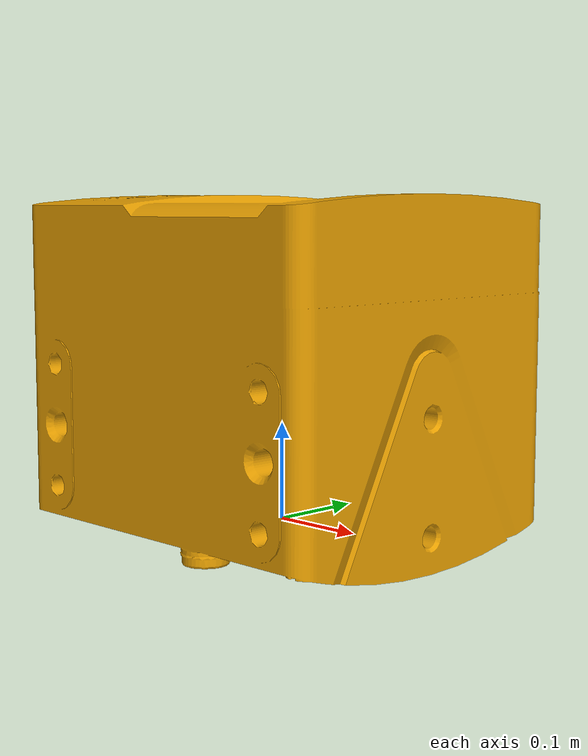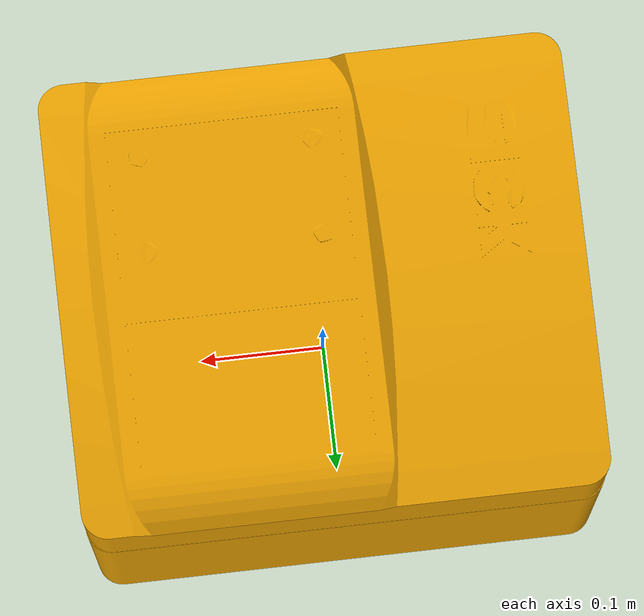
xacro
<?xml version="1.0"?>
<robot xmlns:xacro="http://ros.org/wiki/xacro" name="Visionary-T Mini">
    <xacro:arg name="link_name" default=""/>
    <link name="$(arg link_name)">
        <visual>
            <geometry>
                <mesh filename="package://sick_publisher/meshes/visionary_t_mini.dae" scale="0.005 0.005 0.005"/>
            </geometry>
        </visual>
    </link>
</robot>
